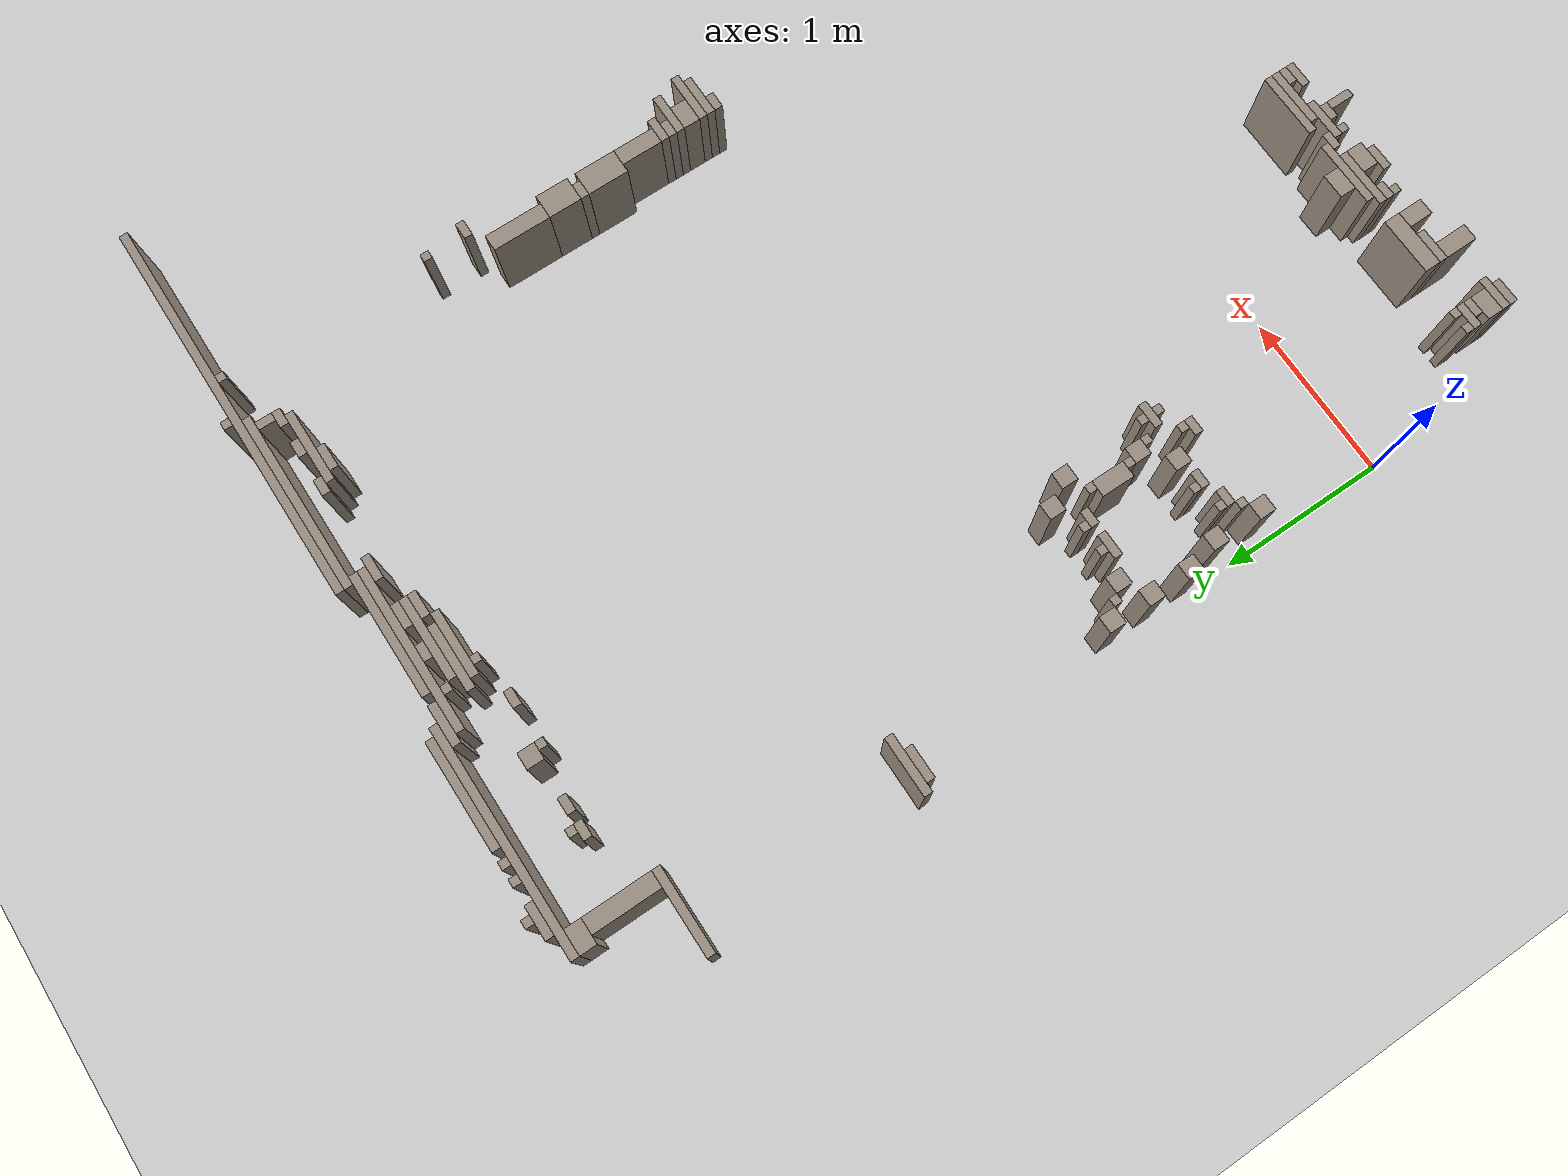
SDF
<sdf version="1.8">
 <world name="sala_real">
  <model name="ground_plane">
   <static>true</static>
   <link name="link">
    <collision name="col">
     <geometry><plane><normal>0 0 1</normal><size>100 100</size></plane></geometry>
    </collision>
    <visual name="vis">
     <geometry><plane><normal>0 0 1</normal><size>100 100</size></plane></geometry>
     <material><ambient>0.8 0.8 0.8 1</ambient><diffuse>0.8 0.8 0.8 1</diffuse></material>
    </visual>
   </link>
  </model>
  <model name="wall_3">
   <static>true</static>
   <pose>2.090 4.812 0.250 0 0 0</pose>
   <link name="link">
    <collision name="col"><geometry><box><size>0.150 0.050 0.500</size></box></geometry></collision>
    <visual name="vis">
     <geometry><box><size>0.150 0.050 0.500</size></box></geometry>
     <material><ambient>0.6 0.55 0.5 1</ambient><diffuse>0.6 0.55 0.5 1</diffuse></material>
    </visual>
   </link>
  </model>
  <model name="wall_24">
   <static>true</static>
   <pose>3.740 4.962 0.250 0 0 0</pose>
   <link name="link">
    <collision name="col"><geometry><box><size>0.050 0.050 0.500</size></box></geometry></collision>
    <visual name="vis">
     <geometry><box><size>0.050 0.050 0.500</size></box></geometry>
     <material><ambient>0.6 0.55 0.5 1</ambient><diffuse>0.6 0.55 0.5 1</diffuse></material>
    </visual>
   </link>
  </model>
  <model name="wall_58">
   <static>true</static>
   <pose>3.615 3.212 0.250 0 0 0</pose>
   <link name="link">
    <collision name="col"><geometry><box><size>0.100 0.350 0.500</size></box></geometry></collision>
    <visual name="vis">
     <geometry><box><size>0.100 0.350 0.500</size></box></geometry>
     <material><ambient>0.6 0.55 0.5 1</ambient><diffuse>0.6 0.55 0.5 1</diffuse></material>
    </visual>
   </link>
  </model>
  <model name="wall_62">
   <static>true</static>
   <pose>3.640 2.937 0.250 0 0 0</pose>
   <link name="link">
    <collision name="col"><geometry><box><size>0.150 0.200 0.500</size></box></geometry></collision>
    <visual name="vis">
     <geometry><box><size>0.150 0.200 0.500</size></box></geometry>
     <material><ambient>0.6 0.55 0.5 1</ambient><diffuse>0.6 0.55 0.5 1</diffuse></material>
    </visual>
   </link>
  </model>
  <model name="wall_87">
   <static>true</static>
   <pose>3.665 2.412 0.250 0 0 0</pose>
   <link name="link">
    <collision name="col"><geometry><box><size>0.100 0.250 0.500</size></box></geometry></collision>
    <visual name="vis">
     <geometry><box><size>0.100 0.250 0.500</size></box></geometry>
     <material><ambient>0.6 0.55 0.5 1</ambient><diffuse>0.6 0.55 0.5 1</diffuse></material>
    </visual>
   </link>
  </model>
  <model name="wall_92">
   <static>true</static>
   <pose>3.690 2.262 0.250 0 0 0</pose>
   <link name="link">
    <collision name="col"><geometry><box><size>0.150 0.050 0.500</size></box></geometry></collision>
    <visual name="vis">
     <geometry><box><size>0.150 0.050 0.500</size></box></geometry>
     <material><ambient>0.6 0.55 0.5 1</ambient><diffuse>0.6 0.55 0.5 1</diffuse></material>
    </visual>
   </link>
  </model>
  <model name="wall_99">
   <static>true</static>
   <pose>3.740 2.162 0.250 0 0 0</pose>
   <link name="link">
    <collision name="col"><geometry><box><size>0.250 0.050 0.500</size></box></geometry></collision>
    <visual name="vis">
     <geometry><box><size>0.250 0.050 0.500</size></box></geometry>
     <material><ambient>0.6 0.55 0.5 1</ambient><diffuse>0.6 0.55 0.5 1</diffuse></material>
    </visual>
   </link>
  </model>
  <model name="wall_100">
   <static>true</static>
   <pose>3.665 2.212 0.250 0 0 0</pose>
   <link name="link">
    <collision name="col"><geometry><box><size>0.100 0.050 0.500</size></box></geometry></collision>
    <visual name="vis">
     <geometry><box><size>0.100 0.050 0.500</size></box></geometry>
     <material><ambient>0.6 0.55 0.5 1</ambient><diffuse>0.6 0.55 0.5 1</diffuse></material>
    </visual>
   </link>
  </model>
  <model name="wall_109">
   <static>true</static>
   <pose>0.065 1.837 0.250 0 0 0</pose>
   <link name="link">
    <collision name="col"><geometry><box><size>0.100 0.100 0.500</size></box></geometry></collision>
    <visual name="vis">
     <geometry><box><size>0.100 0.100 0.500</size></box></geometry>
     <material><ambient>0.6 0.55 0.5 1</ambient><diffuse>0.6 0.55 0.5 1</diffuse></material>
    </visual>
   </link>
  </model>
  <model name="wall_110">
   <static>true</static>
   <pose>0.815 4.612 0.250 0 0 0</pose>
   <link name="link">
    <collision name="col"><geometry><box><size>0.100 0.050 0.500</size></box></geometry></collision>
    <visual name="vis">
     <geometry><box><size>0.100 0.050 0.500</size></box></geometry>
     <material><ambient>0.6 0.55 0.5 1</ambient><diffuse>0.6 0.55 0.5 1</diffuse></material>
    </visual>
   </link>
  </model>
  <model name="wall_113">
   <static>true</static>
   <pose>0.690 4.662 0.250 0 0 0</pose>
   <link name="link">
    <collision name="col"><geometry><box><size>0.050 0.050 0.500</size></box></geometry></collision>
    <visual name="vis">
     <geometry><box><size>0.050 0.050 0.500</size></box></geometry>
     <material><ambient>0.6 0.55 0.5 1</ambient><diffuse>0.6 0.55 0.5 1</diffuse></material>
    </visual>
   </link>
  </model>
  <model name="wall_115">
   <static>true</static>
   <pose>0.665 4.612 0.250 0 0 0</pose>
   <link name="link">
    <collision name="col"><geometry><box><size>0.100 0.050 0.500</size></box></geometry></collision>
    <visual name="vis">
     <geometry><box><size>0.100 0.050 0.500</size></box></geometry>
     <material><ambient>0.6 0.55 0.5 1</ambient><diffuse>0.6 0.55 0.5 1</diffuse></material>
    </visual>
   </link>
  </model>
  <model name="wall_117">
   <static>true</static>
   <pose>0.065 1.587 0.250 0 0 0</pose>
   <link name="link">
    <collision name="col"><geometry><box><size>0.100 0.100 0.500</size></box></geometry></collision>
    <visual name="vis">
     <geometry><box><size>0.100 0.100 0.500</size></box></geometry>
     <material><ambient>0.6 0.55 0.5 1</ambient><diffuse>0.6 0.55 0.5 1</diffuse></material>
    </visual>
   </link>
  </model>
  <model name="wall_119">
   <static>true</static>
   <pose>0.690 1.512 0.250 0 0 0</pose>
   <link name="link">
    <collision name="col"><geometry><box><size>0.050 0.050 0.500</size></box></geometry></collision>
    <visual name="vis">
     <geometry><box><size>0.050 0.050 0.500</size></box></geometry>
     <material><ambient>0.6 0.55 0.5 1</ambient><diffuse>0.6 0.55 0.5 1</diffuse></material>
    </visual>
   </link>
  </model>
  <model name="wall_120">
   <static>true</static>
   <pose>0.715 1.737 0.250 0 0 0</pose>
   <link name="link">
    <collision name="col"><geometry><box><size>0.100 0.100 0.500</size></box></geometry></collision>
    <visual name="vis">
     <geometry><box><size>0.100 0.100 0.500</size></box></geometry>
     <material><ambient>0.6 0.55 0.5 1</ambient><diffuse>0.6 0.55 0.5 1</diffuse></material>
    </visual>
   </link>
  </model>
  <model name="wall_122">
   <static>true</static>
   <pose>0.740 5.012 0.250 0 0 0</pose>
   <link name="link">
    <collision name="col"><geometry><box><size>0.050 0.050 0.500</size></box></geometry></collision>
    <visual name="vis">
     <geometry><box><size>0.050 0.050 0.500</size></box></geometry>
     <material><ambient>0.6 0.55 0.5 1</ambient><diffuse>0.6 0.55 0.5 1</diffuse></material>
    </visual>
   </link>
  </model>
  <model name="wall_124">
   <static>true</static>
   <pose>0.390 1.662 0.250 0 0 0</pose>
   <link name="link">
    <collision name="col"><geometry><box><size>0.050 0.050 0.500</size></box></geometry></collision>
    <visual name="vis">
     <geometry><box><size>0.050 0.050 0.500</size></box></geometry>
     <material><ambient>0.6 0.55 0.5 1</ambient><diffuse>0.6 0.55 0.5 1</diffuse></material>
    </visual>
   </link>
  </model>
  <model name="wall_125">
   <static>true</static>
   <pose>0.565 1.612 0.250 0 0 0</pose>
   <link name="link">
    <collision name="col"><geometry><box><size>0.100 0.050 0.500</size></box></geometry></collision>
    <visual name="vis">
     <geometry><box><size>0.100 0.050 0.500</size></box></geometry>
     <material><ambient>0.6 0.55 0.5 1</ambient><diffuse>0.6 0.55 0.5 1</diffuse></material>
    </visual>
   </link>
  </model>
  <model name="wall_126">
   <static>true</static>
   <pose>0.265 4.637 0.250 0 0 0</pose>
   <link name="link">
    <collision name="col"><geometry><box><size>0.100 0.400 0.500</size></box></geometry></collision>
    <visual name="vis">
     <geometry><box><size>0.100 0.400 0.500</size></box></geometry>
     <material><ambient>0.6 0.55 0.5 1</ambient><diffuse>0.6 0.55 0.5 1</diffuse></material>
    </visual>
   </link>
  </model>
  <model name="wall_127">
   <static>true</static>
   <pose>0.840 1.062 0.250 0 0 0</pose>
   <link name="link">
    <collision name="col"><geometry><box><size>0.050 0.050 0.500</size></box></geometry></collision>
    <visual name="vis">
     <geometry><box><size>0.050 0.050 0.500</size></box></geometry>
     <material><ambient>0.6 0.55 0.5 1</ambient><diffuse>0.6 0.55 0.5 1</diffuse></material>
    </visual>
   </link>
  </model>
  <model name="wall_128">
   <static>true</static>
   <pose>0.690 1.262 0.250 0 0 0</pose>
   <link name="link">
    <collision name="col"><geometry><box><size>0.050 0.050 0.500</size></box></geometry></collision>
    <visual name="vis">
     <geometry><box><size>0.050 0.050 0.500</size></box></geometry>
     <material><ambient>0.6 0.55 0.5 1</ambient><diffuse>0.6 0.55 0.5 1</diffuse></material>
    </visual>
   </link>
  </model>
  <model name="wall_129">
   <static>true</static>
   <pose>0.115 1.137 0.250 0 0 0</pose>
   <link name="link">
    <collision name="col"><geometry><box><size>0.100 0.100 0.500</size></box></geometry></collision>
    <visual name="vis">
     <geometry><box><size>0.100 0.100 0.500</size></box></geometry>
     <material><ambient>0.6 0.55 0.5 1</ambient><diffuse>0.6 0.55 0.5 1</diffuse></material>
    </visual>
   </link>
  </model>
  <model name="wall_130">
   <static>true</static>
   <pose>0.665 1.387 0.250 0 0 0</pose>
   <link name="link">
    <collision name="col"><geometry><box><size>0.100 0.200 0.500</size></box></geometry></collision>
    <visual name="vis">
     <geometry><box><size>0.100 0.200 0.500</size></box></geometry>
     <material><ambient>0.6 0.55 0.5 1</ambient><diffuse>0.6 0.55 0.5 1</diffuse></material>
    </visual>
   </link>
  </model>
  <model name="wall_178">
   <static>true</static>
   <pose>0.390 1.062 0.250 0 0 0</pose>
   <link name="link">
    <collision name="col"><geometry><box><size>0.050 0.050 0.500</size></box></geometry></collision>
    <visual name="vis">
     <geometry><box><size>0.050 0.050 0.500</size></box></geometry>
     <material><ambient>0.6 0.55 0.5 1</ambient><diffuse>0.6 0.55 0.5 1</diffuse></material>
    </visual>
   </link>
  </model>
  <model name="wall_189">
   <static>true</static>
   <pose>0.340 -0.738 0.250 0 0 0</pose>
   <link name="link">
    <collision name="col"><geometry><box><size>0.150 0.050 0.500</size></box></geometry></collision>
    <visual name="vis">
     <geometry><box><size>0.150 0.050 0.500</size></box></geometry>
     <material><ambient>0.6 0.55 0.5 1</ambient><diffuse>0.6 0.55 0.5 1</diffuse></material>
    </visual>
   </link>
  </model>
  <model name="wall_192">
   <static>true</static>
   <pose>0.715 1.187 0.250 0 0 0</pose>
   <link name="link">
    <collision name="col"><geometry><box><size>0.100 0.100 0.500</size></box></geometry></collision>
    <visual name="vis">
     <geometry><box><size>0.100 0.100 0.500</size></box></geometry>
     <material><ambient>0.6 0.55 0.5 1</ambient><diffuse>0.6 0.55 0.5 1</diffuse></material>
    </visual>
   </link>
  </model>
  <model name="wall_193">
   <static>true</static>
   <pose>1.140 4.562 0.250 0 0 0</pose>
   <link name="link">
    <collision name="col"><geometry><box><size>0.050 0.050 0.500</size></box></geometry></collision>
    <visual name="vis">
     <geometry><box><size>0.050 0.050 0.500</size></box></geometry>
     <material><ambient>0.6 0.55 0.5 1</ambient><diffuse>0.6 0.55 0.5 1</diffuse></material>
    </visual>
   </link>
  </model>
  <model name="wall_196">
   <static>true</static>
   <pose>1.340 -0.663 0.250 0 0 0</pose>
   <link name="link">
    <collision name="col"><geometry><box><size>0.150 0.100 0.500</size></box></geometry></collision>
    <visual name="vis">
     <geometry><box><size>0.150 0.100 0.500</size></box></geometry>
     <material><ambient>0.6 0.55 0.5 1</ambient><diffuse>0.6 0.55 0.5 1</diffuse></material>
    </visual>
   </link>
  </model>
  <model name="wall_197">
   <static>true</static>
   <pose>2.015 -0.838 0.250 0 0 0</pose>
   <link name="link">
    <collision name="col"><geometry><box><size>0.100 0.050 0.500</size></box></geometry></collision>
    <visual name="vis">
     <geometry><box><size>0.100 0.050 0.500</size></box></geometry>
     <material><ambient>0.6 0.55 0.5 1</ambient><diffuse>0.6 0.55 0.5 1</diffuse></material>
    </visual>
   </link>
  </model>
  <model name="wall_202">
   <static>true</static>
   <pose>0.340 -0.863 0.250 0 0 0</pose>
   <link name="link">
    <collision name="col"><geometry><box><size>0.150 0.100 0.500</size></box></geometry></collision>
    <visual name="vis">
     <geometry><box><size>0.150 0.100 0.500</size></box></geometry>
     <material><ambient>0.6 0.55 0.5 1</ambient><diffuse>0.6 0.55 0.5 1</diffuse></material>
    </visual>
   </link>
  </model>
  <model name="wall_208">
   <static>true</static>
   <pose>0.690 0.912 0.250 0 0 0</pose>
   <link name="link">
    <collision name="col"><geometry><box><size>0.050 0.050 0.500</size></box></geometry></collision>
    <visual name="vis">
     <geometry><box><size>0.050 0.050 0.500</size></box></geometry>
     <material><ambient>0.6 0.55 0.5 1</ambient><diffuse>0.6 0.55 0.5 1</diffuse></material>
    </visual>
   </link>
  </model>
  <model name="wall_213">
   <static>true</static>
   <pose>0.840 0.962 0.250 0 0 0</pose>
   <link name="link">
    <collision name="col"><geometry><box><size>0.050 0.050 0.500</size></box></geometry></collision>
    <visual name="vis">
     <geometry><box><size>0.050 0.050 0.500</size></box></geometry>
     <material><ambient>0.6 0.55 0.5 1</ambient><diffuse>0.6 0.55 0.5 1</diffuse></material>
    </visual>
   </link>
  </model>
  <model name="wall_214">
   <static>true</static>
   <pose>0.965 -0.888 0.250 0 0 0</pose>
   <link name="link">
    <collision name="col"><geometry><box><size>0.100 0.150 0.500</size></box></geometry></collision>
    <visual name="vis">
     <geometry><box><size>0.100 0.150 0.500</size></box></geometry>
     <material><ambient>0.6 0.55 0.5 1</ambient><diffuse>0.6 0.55 0.5 1</diffuse></material>
    </visual>
   </link>
  </model>
  <model name="wall_216">
   <static>true</static>
   <pose>0.840 -0.763 0.250 0 0 0</pose>
   <link name="link">
    <collision name="col"><geometry><box><size>0.350 0.100 0.500</size></box></geometry></collision>
    <visual name="vis">
     <geometry><box><size>0.350 0.100 0.500</size></box></geometry>
     <material><ambient>0.6 0.55 0.5 1</ambient><diffuse>0.6 0.55 0.5 1</diffuse></material>
    </visual>
   </link>
  </model>
  <model name="wall_220">
   <static>true</static>
   <pose>1.715 -0.888 0.250 0 0 0</pose>
   <link name="link">
    <collision name="col"><geometry><box><size>0.100 0.050 0.500</size></box></geometry></collision>
    <visual name="vis">
     <geometry><box><size>0.100 0.050 0.500</size></box></geometry>
     <material><ambient>0.6 0.55 0.5 1</ambient><diffuse>0.6 0.55 0.5 1</diffuse></material>
    </visual>
   </link>
  </model>
  <model name="wall_224">
   <static>true</static>
   <pose>0.190 0.912 0.250 0 0 0</pose>
   <link name="link">
    <collision name="col"><geometry><box><size>0.050 0.050 0.500</size></box></geometry></collision>
    <visual name="vis">
     <geometry><box><size>0.050 0.050 0.500</size></box></geometry>
     <material><ambient>0.6 0.55 0.5 1</ambient><diffuse>0.6 0.55 0.5 1</diffuse></material>
    </visual>
   </link>
  </model>
  <model name="wall_225">
   <static>true</static>
   <pose>0.290 -0.688 0.250 0 0 0</pose>
   <link name="link">
    <collision name="col"><geometry><box><size>0.050 0.050 0.500</size></box></geometry></collision>
    <visual name="vis">
     <geometry><box><size>0.050 0.050 0.500</size></box></geometry>
     <material><ambient>0.6 0.55 0.5 1</ambient><diffuse>0.6 0.55 0.5 1</diffuse></material>
    </visual>
   </link>
  </model>
  <model name="wall_226">
   <static>true</static>
   <pose>0.765 -0.838 0.250 0 0 0</pose>
   <link name="link">
    <collision name="col"><geometry><box><size>0.200 0.050 0.500</size></box></geometry></collision>
    <visual name="vis">
     <geometry><box><size>0.200 0.050 0.500</size></box></geometry>
     <material><ambient>0.6 0.55 0.5 1</ambient><diffuse>0.6 0.55 0.5 1</diffuse></material>
    </visual>
   </link>
  </model>
  <model name="wall_227">
   <static>true</static>
   <pose>1.740 -0.988 0.250 0 0 0</pose>
   <link name="link">
    <collision name="col"><geometry><box><size>0.050 0.150 0.500</size></box></geometry></collision>
    <visual name="vis">
     <geometry><box><size>0.050 0.150 0.500</size></box></geometry>
     <material><ambient>0.6 0.55 0.5 1</ambient><diffuse>0.6 0.55 0.5 1</diffuse></material>
    </visual>
   </link>
  </model>
  <model name="wall_234">
   <static>true</static>
   <pose>0.740 1.112 0.250 0 0 0</pose>
   <link name="link">
    <collision name="col"><geometry><box><size>0.050 0.050 0.500</size></box></geometry></collision>
    <visual name="vis">
     <geometry><box><size>0.050 0.050 0.500</size></box></geometry>
     <material><ambient>0.6 0.55 0.5 1</ambient><diffuse>0.6 0.55 0.5 1</diffuse></material>
    </visual>
   </link>
  </model>
  <model name="wall_237">
   <static>true</static>
   <pose>0.715 -0.963 0.250 0 0 0</pose>
   <link name="link">
    <collision name="col"><geometry><box><size>0.100 0.200 0.500</size></box></geometry></collision>
    <visual name="vis">
     <geometry><box><size>0.100 0.200 0.500</size></box></geometry>
     <material><ambient>0.6 0.55 0.5 1</ambient><diffuse>0.6 0.55 0.5 1</diffuse></material>
    </visual>
   </link>
  </model>
  <model name="wall_238">
   <static>true</static>
   <pose>1.990 -0.888 0.250 0 0 0</pose>
   <link name="link">
    <collision name="col"><geometry><box><size>0.150 0.050 0.500</size></box></geometry></collision>
    <visual name="vis">
     <geometry><box><size>0.150 0.050 0.500</size></box></geometry>
     <material><ambient>0.6 0.55 0.5 1</ambient><diffuse>0.6 0.55 0.5 1</diffuse></material>
    </visual>
   </link>
  </model>
  <model name="wall_248">
   <static>true</static>
   <pose>0.390 -0.688 0.250 0 0 0</pose>
   <link name="link">
    <collision name="col"><geometry><box><size>0.050 0.050 0.500</size></box></geometry></collision>
    <visual name="vis">
     <geometry><box><size>0.050 0.050 0.500</size></box></geometry>
     <material><ambient>0.6 0.55 0.5 1</ambient><diffuse>0.6 0.55 0.5 1</diffuse></material>
    </visual>
   </link>
  </model>
  <model name="wall_249">
   <static>true</static>
   <pose>1.390 -0.863 0.250 0 0 0</pose>
   <link name="link">
    <collision name="col"><geometry><box><size>0.150 0.100 0.500</size></box></geometry></collision>
    <visual name="vis">
     <geometry><box><size>0.150 0.100 0.500</size></box></geometry>
     <material><ambient>0.6 0.55 0.5 1</ambient><diffuse>0.6 0.55 0.5 1</diffuse></material>
    </visual>
   </link>
  </model>
  <model name="wall_252">
   <static>true</static>
   <pose>0.365 -0.788 0.250 0 0 0</pose>
   <link name="link">
    <collision name="col"><geometry><box><size>0.100 0.050 0.500</size></box></geometry></collision>
    <visual name="vis">
     <geometry><box><size>0.100 0.050 0.500</size></box></geometry>
     <material><ambient>0.6 0.55 0.5 1</ambient><diffuse>0.6 0.55 0.5 1</diffuse></material>
    </visual>
   </link>
  </model>
  <model name="wall_254">
   <static>true</static>
   <pose>1.590 -0.888 0.250 0 0 0</pose>
   <link name="link">
    <collision name="col"><geometry><box><size>0.050 0.050 0.500</size></box></geometry></collision>
    <visual name="vis">
     <geometry><box><size>0.050 0.050 0.500</size></box></geometry>
     <material><ambient>0.6 0.55 0.5 1</ambient><diffuse>0.6 0.55 0.5 1</diffuse></material>
    </visual>
   </link>
  </model>
  <model name="wall_261">
   <static>true</static>
   <pose>1.415 4.562 0.250 0 0 0</pose>
   <link name="link">
    <collision name="col"><geometry><box><size>0.100 0.050 0.500</size></box></geometry></collision>
    <visual name="vis">
     <geometry><box><size>0.100 0.050 0.500</size></box></geometry>
     <material><ambient>0.6 0.55 0.5 1</ambient><diffuse>0.6 0.55 0.5 1</diffuse></material>
    </visual>
   </link>
  </model>
  <model name="wall_275">
   <static>true</static>
   <pose>0.565 1.037 0.250 0 0 0</pose>
   <link name="link">
    <collision name="col"><geometry><box><size>0.100 0.100 0.500</size></box></geometry></collision>
    <visual name="vis">
     <geometry><box><size>0.100 0.100 0.500</size></box></geometry>
     <material><ambient>0.6 0.55 0.5 1</ambient><diffuse>0.6 0.55 0.5 1</diffuse></material>
    </visual>
   </link>
  </model>
  <model name="wall_276">
   <static>true</static>
   <pose>1.890 -0.788 0.250 0 0 0</pose>
   <link name="link">
    <collision name="col"><geometry><box><size>0.350 0.050 0.500</size></box></geometry></collision>
    <visual name="vis">
     <geometry><box><size>0.350 0.050 0.500</size></box></geometry>
     <material><ambient>0.6 0.55 0.5 1</ambient><diffuse>0.6 0.55 0.5 1</diffuse></material>
    </visual>
   </link>
  </model>
  <model name="wall_277">
   <static>true</static>
   <pose>3.765 3.462 0.250 0 0 0</pose>
   <link name="link">
    <collision name="col"><geometry><box><size>0.100 0.050 0.500</size></box></geometry></collision>
    <visual name="vis">
     <geometry><box><size>0.100 0.050 0.500</size></box></geometry>
     <material><ambient>0.6 0.55 0.5 1</ambient><diffuse>0.6 0.55 0.5 1</diffuse></material>
    </visual>
   </link>
  </model>
  <model name="wall_286">
   <static>true</static>
   <pose>0.340 -0.988 0.250 0 0 0</pose>
   <link name="link">
    <collision name="col"><geometry><box><size>0.150 0.050 0.500</size></box></geometry></collision>
    <visual name="vis">
     <geometry><box><size>0.150 0.050 0.500</size></box></geometry>
     <material><ambient>0.6 0.55 0.5 1</ambient><diffuse>0.6 0.55 0.5 1</diffuse></material>
    </visual>
   </link>
  </model>
  <model name="wall_321">
   <static>true</static>
   <pose>1.690 4.612 0.250 0 0 0</pose>
   <link name="link">
    <collision name="col"><geometry><box><size>0.050 0.050 0.500</size></box></geometry></collision>
    <visual name="vis">
     <geometry><box><size>0.050 0.050 0.500</size></box></geometry>
     <material><ambient>0.6 0.55 0.5 1</ambient><diffuse>0.6 0.55 0.5 1</diffuse></material>
    </visual>
   </link>
  </model>
  <model name="wall_372">
   <static>true</static>
   <pose>1.140 -0.888 0.250 0 0 0</pose>
   <link name="link">
    <collision name="col"><geometry><box><size>0.050 0.050 0.500</size></box></geometry></collision>
    <visual name="vis">
     <geometry><box><size>0.050 0.050 0.500</size></box></geometry>
     <material><ambient>0.6 0.55 0.5 1</ambient><diffuse>0.6 0.55 0.5 1</diffuse></material>
    </visual>
   </link>
  </model>
  <model name="wall_378">
   <static>true</static>
   <pose>2.090 4.712 0.250 0 0 0</pose>
   <link name="link">
    <collision name="col"><geometry><box><size>0.150 0.050 0.500</size></box></geometry></collision>
    <visual name="vis">
     <geometry><box><size>0.150 0.050 0.500</size></box></geometry>
     <material><ambient>0.6 0.55 0.5 1</ambient><diffuse>0.6 0.55 0.5 1</diffuse></material>
    </visual>
   </link>
  </model>
  <model name="wall_400">
   <static>true</static>
   <pose>3.390 4.887 0.250 0 0 0</pose>
   <link name="link">
    <collision name="col"><geometry><box><size>0.050 0.100 0.500</size></box></geometry></collision>
    <visual name="vis">
     <geometry><box><size>0.050 0.100 0.500</size></box></geometry>
     <material><ambient>0.6 0.55 0.5 1</ambient><diffuse>0.6 0.55 0.5 1</diffuse></material>
    </visual>
   </link>
  </model>
  <model name="wall_401">
   <static>true</static>
   <pose>3.665 1.912 0.250 0 0 0</pose>
   <link name="link">
    <collision name="col"><geometry><box><size>0.100 0.050 0.500</size></box></geometry></collision>
    <visual name="vis">
     <geometry><box><size>0.100 0.050 0.500</size></box></geometry>
     <material><ambient>0.6 0.55 0.5 1</ambient><diffuse>0.6 0.55 0.5 1</diffuse></material>
    </visual>
   </link>
  </model>
  <model name="wall_409">
   <static>true</static>
   <pose>3.165 4.812 0.250 0 0 0</pose>
   <link name="link">
    <collision name="col"><geometry><box><size>0.100 0.050 0.500</size></box></geometry></collision>
    <visual name="vis">
     <geometry><box><size>0.100 0.050 0.500</size></box></geometry>
     <material><ambient>0.6 0.55 0.5 1</ambient><diffuse>0.6 0.55 0.5 1</diffuse></material>
    </visual>
   </link>
  </model>
  <model name="wall_413">
   <static>true</static>
   <pose>0.840 1.012 0.250 0 0 0</pose>
   <link name="link">
    <collision name="col"><geometry><box><size>0.150 0.050 0.500</size></box></geometry></collision>
    <visual name="vis">
     <geometry><box><size>0.150 0.050 0.500</size></box></geometry>
     <material><ambient>0.6 0.55 0.5 1</ambient><diffuse>0.6 0.55 0.5 1</diffuse></material>
    </visual>
   </link>
  </model>
  <model name="wall_464">
   <static>true</static>
   <pose>1.865 4.812 0.250 0 0 0</pose>
   <link name="link">
    <collision name="col"><geometry><box><size>0.100 0.050 0.500</size></box></geometry></collision>
    <visual name="vis">
     <geometry><box><size>0.100 0.050 0.500</size></box></geometry>
     <material><ambient>0.6 0.55 0.5 1</ambient><diffuse>0.6 0.55 0.5 1</diffuse></material>
    </visual>
   </link>
  </model>
  <model name="wall_475">
   <static>true</static>
   <pose>0.240 1.012 0.250 0 0 0</pose>
   <link name="link">
    <collision name="col"><geometry><box><size>0.050 0.050 0.500</size></box></geometry></collision>
    <visual name="vis">
     <geometry><box><size>0.050 0.050 0.500</size></box></geometry>
     <material><ambient>0.6 0.55 0.5 1</ambient><diffuse>0.6 0.55 0.5 1</diffuse></material>
    </visual>
   </link>
  </model>
  <model name="wall_512">
   <static>true</static>
   <pose>1.565 -0.788 0.250 0 0 0</pose>
   <link name="link">
    <collision name="col"><geometry><box><size>0.100 0.050 0.500</size></box></geometry></collision>
    <visual name="vis">
     <geometry><box><size>0.100 0.050 0.500</size></box></geometry>
     <material><ambient>0.6 0.55 0.5 1</ambient><diffuse>0.6 0.55 0.5 1</diffuse></material>
    </visual>
   </link>
  </model>
  <model name="wall_568">
   <static>true</static>
   <pose>0.015 3.062 0.250 0 0 0</pose>
   <link name="link">
    <collision name="col"><geometry><box><size>0.200 0.050 0.500</size></box></geometry></collision>
    <visual name="vis">
     <geometry><box><size>0.200 0.050 0.500</size></box></geometry>
     <material><ambient>0.6 0.55 0.5 1</ambient><diffuse>0.6 0.55 0.5 1</diffuse></material>
    </visual>
   </link>
  </model>
  <model name="wall_583">
   <static>true</static>
   <pose>0.640 5.012 0.250 0 0 0</pose>
   <link name="link">
    <collision name="col"><geometry><box><size>0.050 0.050 0.500</size></box></geometry></collision>
    <visual name="vis">
     <geometry><box><size>0.050 0.050 0.500</size></box></geometry>
     <material><ambient>0.6 0.55 0.5 1</ambient><diffuse>0.6 0.55 0.5 1</diffuse></material>
    </visual>
   </link>
  </model>
  <model name="wall_589">
   <static>true</static>
   <pose>0.540 1.662 0.250 0 0 0</pose>
   <link name="link">
    <collision name="col"><geometry><box><size>0.050 0.050 0.500</size></box></geometry></collision>
    <visual name="vis">
     <geometry><box><size>0.050 0.050 0.500</size></box></geometry>
     <material><ambient>0.6 0.55 0.5 1</ambient><diffuse>0.6 0.55 0.5 1</diffuse></material>
    </visual>
   </link>
  </model>
  <model name="wall_622">
   <static>true</static>
   <pose>0.440 5.062 0.250 0 0 0</pose>
   <link name="link">
    <collision name="col"><geometry><box><size>0.050 0.050 0.500</size></box></geometry></collision>
    <visual name="vis">
     <geometry><box><size>0.050 0.050 0.500</size></box></geometry>
     <material><ambient>0.6 0.55 0.5 1</ambient><diffuse>0.6 0.55 0.5 1</diffuse></material>
    </visual>
   </link>
  </model>
  <model name="wall_623">
   <static>true</static>
   <pose>3.490 5.062 0.250 0 0 0</pose>
   <link name="link">
    <collision name="col"><geometry><box><size>0.050 0.050 0.500</size></box></geometry></collision>
    <visual name="vis">
     <geometry><box><size>0.050 0.050 0.500</size></box></geometry>
     <material><ambient>0.6 0.55 0.5 1</ambient><diffuse>0.6 0.55 0.5 1</diffuse></material>
    </visual>
   </link>
  </model>
  <model name="wall_629">
   <static>true</static>
   <pose>0.415 5.012 0.250 0 0 0</pose>
   <link name="link">
    <collision name="col"><geometry><box><size>0.200 0.050 0.500</size></box></geometry></collision>
    <visual name="vis">
     <geometry><box><size>0.200 0.050 0.500</size></box></geometry>
     <material><ambient>0.6 0.55 0.5 1</ambient><diffuse>0.6 0.55 0.5 1</diffuse></material>
    </visual>
   </link>
  </model>
  <model name="wall_632">
   <static>true</static>
   <pose>1.140 5.012 0.250 0 0 0</pose>
   <link name="link">
    <collision name="col"><geometry><box><size>0.650 0.050 0.500</size></box></geometry></collision>
    <visual name="vis">
     <geometry><box><size>0.650 0.050 0.500</size></box></geometry>
     <material><ambient>0.6 0.55 0.5 1</ambient><diffuse>0.6 0.55 0.5 1</diffuse></material>
    </visual>
   </link>
  </model>
  <model name="wall_633">
   <static>true</static>
   <pose>3.565 5.012 0.250 0 0 0</pose>
   <link name="link">
    <collision name="col"><geometry><box><size>2.400 0.050 0.500</size></box></geometry></collision>
    <visual name="vis">
     <geometry><box><size>2.400 0.050 0.500</size></box></geometry>
     <material><ambient>0.6 0.55 0.5 1</ambient><diffuse>0.6 0.55 0.5 1</diffuse></material>
    </visual>
   </link>
  </model>
  <model name="wall_637">
   <static>true</static>
   <pose>0.840 4.962 0.250 0 0 0</pose>
   <link name="link">
    <collision name="col"><geometry><box><size>1.350 0.050 0.500</size></box></geometry></collision>
    <visual name="vis">
     <geometry><box><size>1.350 0.050 0.500</size></box></geometry>
     <material><ambient>0.6 0.55 0.5 1</ambient><diffuse>0.6 0.55 0.5 1</diffuse></material>
    </visual>
   </link>
  </model>
  <model name="wall_638">
   <static>true</static>
   <pose>2.915 4.962 0.250 0 0 0</pose>
   <link name="link">
    <collision name="col"><geometry><box><size>1.100 0.050 0.500</size></box></geometry></collision>
    <visual name="vis">
     <geometry><box><size>1.100 0.050 0.500</size></box></geometry>
     <material><ambient>0.6 0.55 0.5 1</ambient><diffuse>0.6 0.55 0.5 1</diffuse></material>
    </visual>
   </link>
  </model>
  <model name="wall_639">
   <static>true</static>
   <pose>3.740 3.712 0.250 0 0 0</pose>
   <link name="link">
    <collision name="col"><geometry><box><size>0.050 0.050 0.500</size></box></geometry></collision>
    <visual name="vis">
     <geometry><box><size>0.050 0.050 0.500</size></box></geometry>
     <material><ambient>0.6 0.55 0.5 1</ambient><diffuse>0.6 0.55 0.5 1</diffuse></material>
    </visual>
   </link>
  </model>
  <model name="wall_643">
   <static>true</static>
   <pose>0.240 4.887 0.250 0 0 0</pose>
   <link name="link">
    <collision name="col"><geometry><box><size>0.150 0.100 0.500</size></box></geometry></collision>
    <visual name="vis">
     <geometry><box><size>0.150 0.100 0.500</size></box></geometry>
     <material><ambient>0.6 0.55 0.5 1</ambient><diffuse>0.6 0.55 0.5 1</diffuse></material>
    </visual>
   </link>
  </model>
  <model name="wall_644">
   <static>true</static>
   <pose>1.490 4.912 0.250 0 0 0</pose>
   <link name="link">
    <collision name="col"><geometry><box><size>0.250 0.050 0.500</size></box></geometry></collision>
    <visual name="vis">
     <geometry><box><size>0.250 0.050 0.500</size></box></geometry>
     <material><ambient>0.6 0.55 0.5 1</ambient><diffuse>0.6 0.55 0.5 1</diffuse></material>
    </visual>
   </link>
  </model>
  <model name="wall_645">
   <static>true</static>
   <pose>2.040 4.912 0.250 0 0 0</pose>
   <link name="link">
    <collision name="col"><geometry><box><size>0.750 0.050 0.500</size></box></geometry></collision>
    <visual name="vis">
     <geometry><box><size>0.750 0.050 0.500</size></box></geometry>
     <material><ambient>0.6 0.55 0.5 1</ambient><diffuse>0.6 0.55 0.5 1</diffuse></material>
    </visual>
   </link>
  </model>
  <model name="wall_650">
   <static>true</static>
   <pose>1.915 4.862 0.250 0 0 0</pose>
   <link name="link">
    <collision name="col"><geometry><box><size>1.000 0.050 0.500</size></box></geometry></collision>
    <visual name="vis">
     <geometry><box><size>1.000 0.050 0.500</size></box></geometry>
     <material><ambient>0.6 0.55 0.5 1</ambient><diffuse>0.6 0.55 0.5 1</diffuse></material>
    </visual>
   </link>
  </model>
  <model name="wall_654">
   <static>true</static>
   <pose>0.265 0.962 0.250 0 0 0</pose>
   <link name="link">
    <collision name="col"><geometry><box><size>0.100 0.050 0.500</size></box></geometry></collision>
    <visual name="vis">
     <geometry><box><size>0.100 0.050 0.500</size></box></geometry>
     <material><ambient>0.6 0.55 0.5 1</ambient><diffuse>0.6 0.55 0.5 1</diffuse></material>
    </visual>
   </link>
  </model>
  <model name="wall_655">
   <static>true</static>
   <pose>1.640 4.812 0.250 0 0 0</pose>
   <link name="link">
    <collision name="col"><geometry><box><size>0.050 0.050 0.500</size></box></geometry></collision>
    <visual name="vis">
     <geometry><box><size>0.050 0.050 0.500</size></box></geometry>
     <material><ambient>0.6 0.55 0.5 1</ambient><diffuse>0.6 0.55 0.5 1</diffuse></material>
    </visual>
   </link>
  </model>
  <model name="wall_658">
   <static>true</static>
   <pose>2.390 4.812 0.250 0 0 0</pose>
   <link name="link">
    <collision name="col"><geometry><box><size>0.150 0.050 0.500</size></box></geometry></collision>
    <visual name="vis">
     <geometry><box><size>0.150 0.050 0.500</size></box></geometry>
     <material><ambient>0.6 0.55 0.5 1</ambient><diffuse>0.6 0.55 0.5 1</diffuse></material>
    </visual>
   </link>
  </model>
  <model name="wall_659">
   <static>true</static>
   <pose>2.915 4.812 0.250 0 0 0</pose>
   <link name="link">
    <collision name="col"><geometry><box><size>0.100 0.050 0.500</size></box></geometry></collision>
    <visual name="vis">
     <geometry><box><size>0.100 0.050 0.500</size></box></geometry>
     <material><ambient>0.6 0.55 0.5 1</ambient><diffuse>0.6 0.55 0.5 1</diffuse></material>
    </visual>
   </link>
  </model>
  <model name="wall_661">
   <static>true</static>
   <pose>3.365 4.812 0.250 0 0 0</pose>
   <link name="link">
    <collision name="col"><geometry><box><size>0.100 0.050 0.500</size></box></geometry></collision>
    <visual name="vis">
     <geometry><box><size>0.100 0.050 0.500</size></box></geometry>
     <material><ambient>0.6 0.55 0.5 1</ambient><diffuse>0.6 0.55 0.5 1</diffuse></material>
    </visual>
   </link>
  </model>
  <model name="wall_663">
   <static>true</static>
   <pose>1.915 4.762 0.250 0 0 0</pose>
   <link name="link">
    <collision name="col"><geometry><box><size>0.500 0.050 0.500</size></box></geometry></collision>
    <visual name="vis">
     <geometry><box><size>0.500 0.050 0.500</size></box></geometry>
     <material><ambient>0.6 0.55 0.5 1</ambient><diffuse>0.6 0.55 0.5 1</diffuse></material>
    </visual>
   </link>
  </model>
  <model name="wall_664">
   <static>true</static>
   <pose>3.140 4.762 0.250 0 0 0</pose>
   <link name="link">
    <collision name="col"><geometry><box><size>0.450 0.050 0.500</size></box></geometry></collision>
    <visual name="vis">
     <geometry><box><size>0.450 0.050 0.500</size></box></geometry>
     <material><ambient>0.6 0.55 0.5 1</ambient><diffuse>0.6 0.55 0.5 1</diffuse></material>
    </visual>
   </link>
  </model>
  <model name="wall_667">
   <static>true</static>
   <pose>1.765 4.712 0.250 0 0 0</pose>
   <link name="link">
    <collision name="col"><geometry><box><size>0.400 0.050 0.500</size></box></geometry></collision>
    <visual name="vis">
     <geometry><box><size>0.400 0.050 0.500</size></box></geometry>
     <material><ambient>0.6 0.55 0.5 1</ambient><diffuse>0.6 0.55 0.5 1</diffuse></material>
    </visual>
   </link>
  </model>
  <model name="wall_668">
   <static>true</static>
   <pose>3.040 4.712 0.250 0 0 0</pose>
   <link name="link">
    <collision name="col"><geometry><box><size>0.150 0.050 0.500</size></box></geometry></collision>
    <visual name="vis">
     <geometry><box><size>0.150 0.050 0.500</size></box></geometry>
     <material><ambient>0.6 0.55 0.5 1</ambient><diffuse>0.6 0.55 0.5 1</diffuse></material>
    </visual>
   </link>
  </model>
  <model name="wall_671">
   <static>true</static>
   <pose>1.115 4.637 0.250 0 0 0</pose>
   <link name="link">
    <collision name="col"><geometry><box><size>0.100 0.100 0.500</size></box></geometry></collision>
    <visual name="vis">
     <geometry><box><size>0.100 0.100 0.500</size></box></geometry>
     <material><ambient>0.6 0.55 0.5 1</ambient><diffuse>0.6 0.55 0.5 1</diffuse></material>
    </visual>
   </link>
  </model>
  <model name="wall_672">
   <static>true</static>
   <pose>1.815 4.662 0.250 0 0 0</pose>
   <link name="link">
    <collision name="col"><geometry><box><size>0.400 0.050 0.500</size></box></geometry></collision>
    <visual name="vis">
     <geometry><box><size>0.400 0.050 0.500</size></box></geometry>
     <material><ambient>0.6 0.55 0.5 1</ambient><diffuse>0.6 0.55 0.5 1</diffuse></material>
    </visual>
   </link>
  </model>
  <model name="wall_677">
   <static>true</static>
   <pose>0.665 0.862 0.250 0 0 0</pose>
   <link name="link">
    <collision name="col"><geometry><box><size>0.100 0.050 0.500</size></box></geometry></collision>
    <visual name="vis">
     <geometry><box><size>0.100 0.050 0.500</size></box></geometry>
     <material><ambient>0.6 0.55 0.5 1</ambient><diffuse>0.6 0.55 0.5 1</diffuse></material>
    </visual>
   </link>
  </model>
  <model name="wall_678">
   <static>true</static>
   <pose>0.815 1.587 0.250 0 0 0</pose>
   <link name="link">
    <collision name="col"><geometry><box><size>0.100 0.100 0.500</size></box></geometry></collision>
    <visual name="vis">
     <geometry><box><size>0.100 0.100 0.500</size></box></geometry>
     <material><ambient>0.6 0.55 0.5 1</ambient><diffuse>0.6 0.55 0.5 1</diffuse></material>
    </visual>
   </link>
  </model>
  <model name="wall_697">
   <static>true</static>
   <pose>0.065 4.412 0.250 0 0 0</pose>
   <link name="link">
    <collision name="col"><geometry><box><size>0.500 0.050 0.500</size></box></geometry></collision>
    <visual name="vis">
     <geometry><box><size>0.500 0.050 0.500</size></box></geometry>
     <material><ambient>0.6 0.55 0.5 1</ambient><diffuse>0.6 0.55 0.5 1</diffuse></material>
    </visual>
   </link>
  </model>
  <model name="wall_746">
   <static>true</static>
   <pose>3.615 2.812 0.250 0 0 0</pose>
   <link name="link">
    <collision name="col"><geometry><box><size>0.100 0.050 0.500</size></box></geometry></collision>
    <visual name="vis">
     <geometry><box><size>0.100 0.050 0.500</size></box></geometry>
     <material><ambient>0.6 0.55 0.5 1</ambient><diffuse>0.6 0.55 0.5 1</diffuse></material>
    </visual>
   </link>
  </model>
  <model name="wall_773">
   <static>true</static>
   <pose>0.040 3.112 0.250 0 0 0</pose>
   <link name="link">
    <collision name="col"><geometry><box><size>0.350 0.050 0.500</size></box></geometry></collision>
    <visual name="vis">
     <geometry><box><size>0.350 0.050 0.500</size></box></geometry>
     <material><ambient>0.6 0.55 0.5 1</ambient><diffuse>0.6 0.55 0.5 1</diffuse></material>
    </visual>
   </link>
  </model>
  <model name="wall_780">
   <static>true</static>
   <pose>3.640 2.662 0.250 0 0 0</pose>
   <link name="link">
    <collision name="col"><geometry><box><size>0.150 0.250 0.500</size></box></geometry></collision>
    <visual name="vis">
     <geometry><box><size>0.150 0.250 0.500</size></box></geometry>
     <material><ambient>0.6 0.55 0.5 1</ambient><diffuse>0.6 0.55 0.5 1</diffuse></material>
    </visual>
   </link>
  </model>
  <model name="wall_795">
   <static>true</static>
   <pose>3.690 2.087 0.250 0 0 0</pose>
   <link name="link">
    <collision name="col"><geometry><box><size>0.150 0.100 0.500</size></box></geometry></collision>
    <visual name="vis">
     <geometry><box><size>0.150 0.100 0.500</size></box></geometry>
     <material><ambient>0.6 0.55 0.5 1</ambient><diffuse>0.6 0.55 0.5 1</diffuse></material>
    </visual>
   </link>
  </model>
  <model name="wall_796">
   <static>true</static>
   <pose>3.740 1.962 0.250 0 0 0</pose>
   <link name="link">
    <collision name="col"><geometry><box><size>0.250 0.050 0.500</size></box></geometry></collision>
    <visual name="vis">
     <geometry><box><size>0.250 0.050 0.500</size></box></geometry>
     <material><ambient>0.6 0.55 0.5 1</ambient><diffuse>0.6 0.55 0.5 1</diffuse></material>
    </visual>
   </link>
  </model>
  <model name="wall_801">
   <static>true</static>
   <pose>3.765 2.012 0.250 0 0 0</pose>
   <link name="link">
    <collision name="col"><geometry><box><size>0.300 0.050 0.500</size></box></geometry></collision>
    <visual name="vis">
     <geometry><box><size>0.300 0.050 0.500</size></box></geometry>
     <material><ambient>0.6 0.55 0.5 1</ambient><diffuse>0.6 0.55 0.5 1</diffuse></material>
    </visual>
   </link>
  </model>
  <model name="wall_810">
   <static>true</static>
   <pose>0.065 1.337 0.250 0 0 0</pose>
   <link name="link">
    <collision name="col"><geometry><box><size>0.100 0.100 0.500</size></box></geometry></collision>
    <visual name="vis">
     <geometry><box><size>0.100 0.100 0.500</size></box></geometry>
     <material><ambient>0.6 0.55 0.5 1</ambient><diffuse>0.6 0.55 0.5 1</diffuse></material>
    </visual>
   </link>
  </model>
  <model name="wall_813">
   <static>true</static>
   <pose>0.140 1.762 0.250 0 0 0</pose>
   <link name="link">
    <collision name="col"><geometry><box><size>0.050 0.050 0.500</size></box></geometry></collision>
    <visual name="vis">
     <geometry><box><size>0.050 0.050 0.500</size></box></geometry>
     <material><ambient>0.6 0.55 0.5 1</ambient><diffuse>0.6 0.55 0.5 1</diffuse></material>
    </visual>
   </link>
  </model>
  <model name="wall_819">
   <static>true</static>
   <pose>0.215 1.687 0.250 0 0 0</pose>
   <link name="link">
    <collision name="col"><geometry><box><size>0.100 0.100 0.500</size></box></geometry></collision>
    <visual name="vis">
     <geometry><box><size>0.100 0.100 0.500</size></box></geometry>
     <material><ambient>0.6 0.55 0.5 1</ambient><diffuse>0.6 0.55 0.5 1</diffuse></material>
    </visual>
   </link>
  </model>
  <model name="wall_826">
   <static>true</static>
   <pose>0.390 1.612 0.250 0 0 0</pose>
   <link name="link">
    <collision name="col"><geometry><box><size>0.150 0.050 0.500</size></box></geometry></collision>
    <visual name="vis">
     <geometry><box><size>0.150 0.050 0.500</size></box></geometry>
     <material><ambient>0.6 0.55 0.5 1</ambient><diffuse>0.6 0.55 0.5 1</diffuse></material>
    </visual>
   </link>
  </model>
  <model name="wall_841">
   <static>true</static>
   <pose>0.115 0.837 0.250 0 0 0</pose>
   <link name="link">
    <collision name="col"><geometry><box><size>0.100 0.100 0.500</size></box></geometry></collision>
    <visual name="vis">
     <geometry><box><size>0.100 0.100 0.500</size></box></geometry>
     <material><ambient>0.6 0.55 0.5 1</ambient><diffuse>0.6 0.55 0.5 1</diffuse></material>
    </visual>
   </link>
  </model>
  <model name="wall_845">
   <static>true</static>
   <pose>0.415 1.012 0.250 0 0 0</pose>
   <link name="link">
    <collision name="col"><geometry><box><size>0.100 0.050 0.500</size></box></geometry></collision>
    <visual name="vis">
     <geometry><box><size>0.100 0.050 0.500</size></box></geometry>
     <material><ambient>0.6 0.55 0.5 1</ambient><diffuse>0.6 0.55 0.5 1</diffuse></material>
    </visual>
   </link>
  </model>
  <model name="wall_876">
   <static>true</static>
   <pose>1.340 -0.938 0.250 0 0 0</pose>
   <link name="link">
    <collision name="col"><geometry><box><size>0.150 0.050 0.500</size></box></geometry></collision>
    <visual name="vis">
     <geometry><box><size>0.150 0.050 0.500</size></box></geometry>
     <material><ambient>0.6 0.55 0.5 1</ambient><diffuse>0.6 0.55 0.5 1</diffuse></material>
    </visual>
   </link>
  </model>
  <model name="wall_885">
   <static>true</static>
   <pose>1.365 -0.738 0.250 0 0 0</pose>
   <link name="link">
    <collision name="col"><geometry><box><size>0.400 0.050 0.500</size></box></geometry></collision>
    <visual name="vis">
     <geometry><box><size>0.400 0.050 0.500</size></box></geometry>
     <material><ambient>0.6 0.55 0.5 1</ambient><diffuse>0.6 0.55 0.5 1</diffuse></material>
    </visual>
   </link>
  </model>
  <model name="wall_886">
   <static>true</static>
   <pose>1.865 -0.738 0.250 0 0 0</pose>
   <link name="link">
    <collision name="col"><geometry><box><size>0.400 0.050 0.500</size></box></geometry></collision>
    <visual name="vis">
     <geometry><box><size>0.400 0.050 0.500</size></box></geometry>
     <material><ambient>0.6 0.55 0.5 1</ambient><diffuse>0.6 0.55 0.5 1</diffuse></material>
    </visual>
   </link>
  </model>
  <model name="wall_894">
   <static>true</static>
   <pose>1.290 -0.788 0.250 0 0 0</pose>
   <link name="link">
    <collision name="col"><geometry><box><size>0.350 0.050 0.500</size></box></geometry></collision>
    <visual name="vis">
     <geometry><box><size>0.350 0.050 0.500</size></box></geometry>
     <material><ambient>0.6 0.55 0.5 1</ambient><diffuse>0.6 0.55 0.5 1</diffuse></material>
    </visual>
   </link>
  </model>
  <model name="wall_905">
   <static>true</static>
   <pose>1.165 -0.838 0.250 0 0 0</pose>
   <link name="link">
    <collision name="col"><geometry><box><size>0.100 0.050 0.500</size></box></geometry></collision>
    <visual name="vis">
     <geometry><box><size>0.100 0.050 0.500</size></box></geometry>
     <material><ambient>0.6 0.55 0.5 1</ambient><diffuse>0.6 0.55 0.5 1</diffuse></material>
    </visual>
   </link>
  </model>
  <model name="wall_907">
   <static>true</static>
   <pose>1.690 -0.838 0.250 0 0 0</pose>
   <link name="link">
    <collision name="col"><geometry><box><size>0.250 0.050 0.500</size></box></geometry></collision>
    <visual name="vis">
     <geometry><box><size>0.250 0.050 0.500</size></box></geometry>
     <material><ambient>0.6 0.55 0.5 1</ambient><diffuse>0.6 0.55 0.5 1</diffuse></material>
    </visual>
   </link>
  </model>
  <model name="wall_925">
   <static>true</static>
   <pose>0.365 -0.938 0.250 0 0 0</pose>
   <link name="link">
    <collision name="col"><geometry><box><size>0.200 0.050 0.500</size></box></geometry></collision>
    <visual name="vis">
     <geometry><box><size>0.200 0.050 0.500</size></box></geometry>
     <material><ambient>0.6 0.55 0.5 1</ambient><diffuse>0.6 0.55 0.5 1</diffuse></material>
    </visual>
   </link>
  </model>
 </world>
</sdf>
